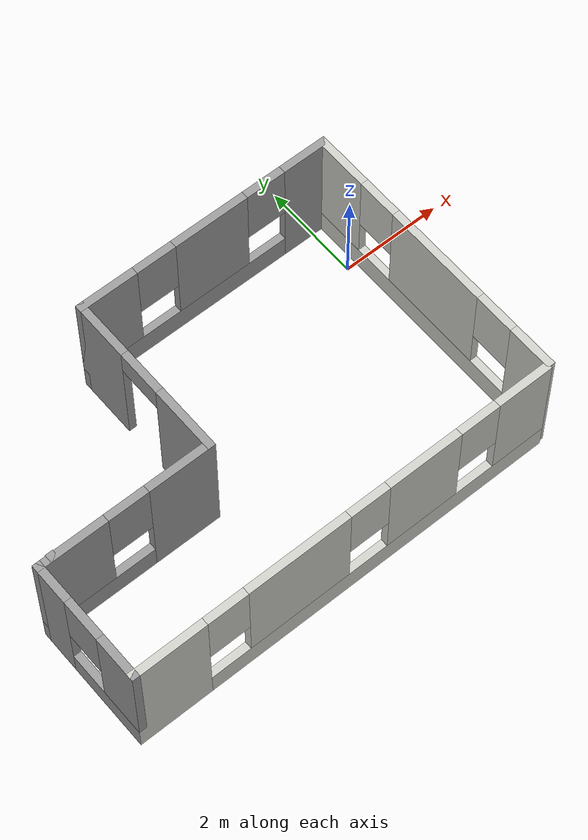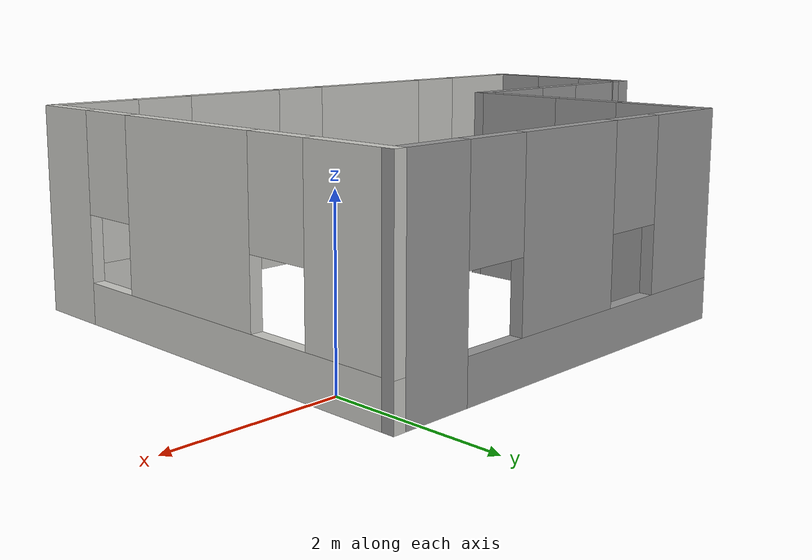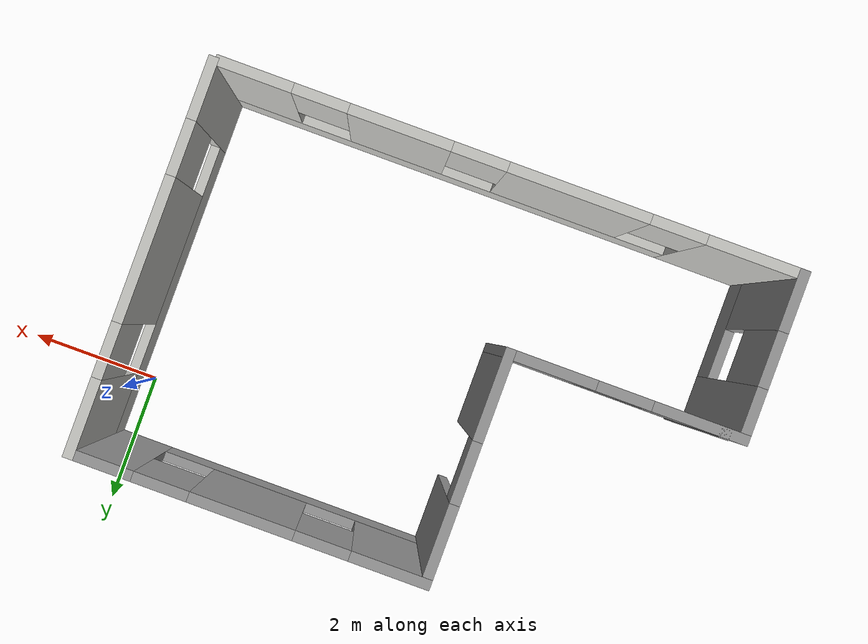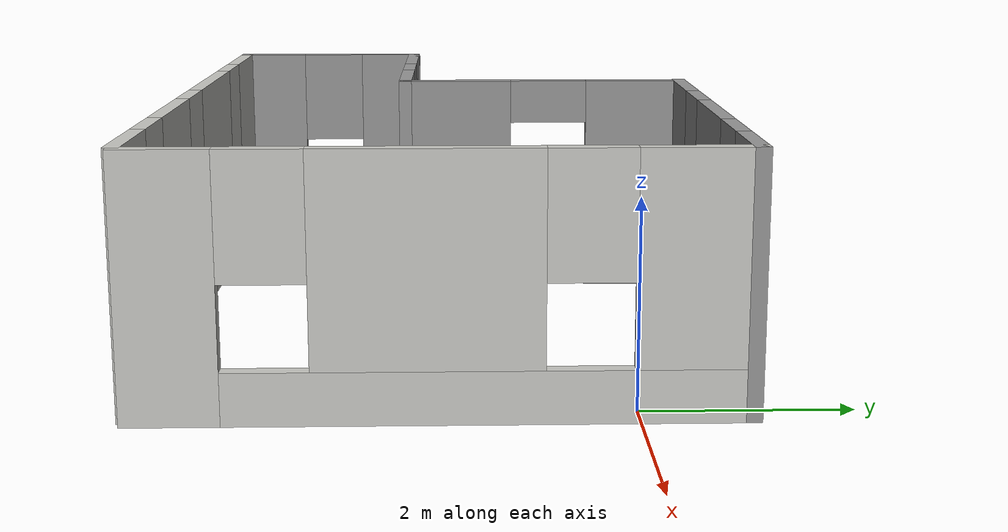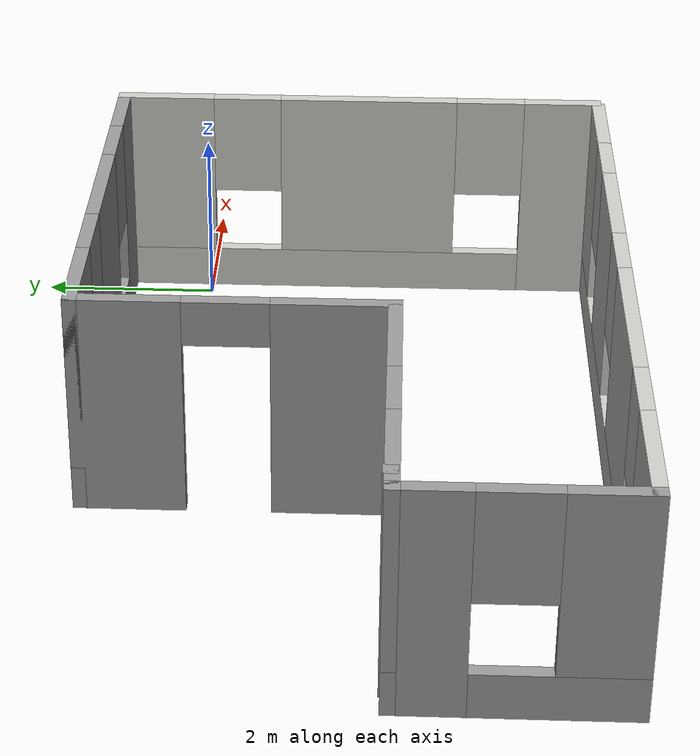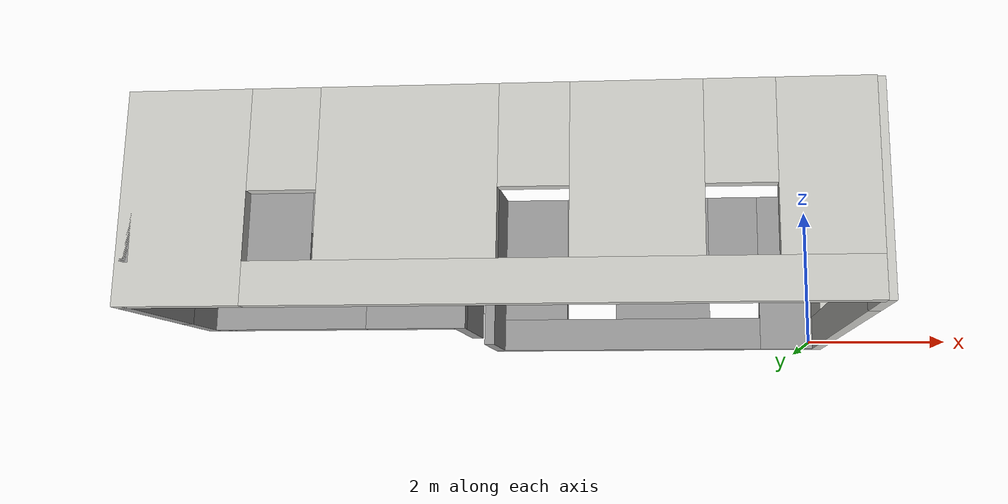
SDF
<?xml version='1.0'?>
<sdf version='1.6'>
  <model name='building'>
    <pose frame=''>-3.96344 -1.80674 0 0 -0 0</pose>
    <link name='Wall_14'>
      <pose frame=''>4.225 0.019583 0 0 -0 1.5708</pose>
      <visual name='Wall_14_Visual_0'>
        <pose frame=''>-2.42247 0 1.25 0 -0 0</pose>
        <geometry>
          <box>
            <size>0.905067 0.15 2.5</size>
          </box>
        </geometry>
        <material>
          <script>
            <uri>file://media/materials/scripts/gazebo.material</uri>
            <name>Gazebo/CeilingTiled</name>
          </script>
          <ambient>1 0.521569 0.65098 1</ambient>
        </material>
        <meta>
          <layer>0</layer>
        </meta>
      </visual>
      <collision name='Wall_14_Collision_0'>
        <geometry>
          <box>
            <size>0.905067 0.15 2.5</size>
          </box>
        </geometry>
        <pose frame=''>-2.42247 0 1.25 0 -0 0</pose>
      </collision>
      <visual name='Wall_14_Visual_1'>
        <pose frame=''>0.452533 0 0.25 0 -0 0</pose>
        <geometry>
          <box>
            <size>4.84493 0.15 0.5</size>
          </box>
        </geometry>
        <material>
          <script>
            <uri>file://media/materials/scripts/gazebo.material</uri>
            <name>Gazebo/CeilingTiled</name>
          </script>
          <ambient>1 0.521569 0.65098 1</ambient>
        </material>
        <meta>
          <layer>0</layer>
        </meta>
      </visual>
      <collision name='Wall_14_Collision_1'>
        <geometry>
          <box>
            <size>4.84493 0.15 0.5</size>
          </box>
        </geometry>
        <pose frame=''>0.452533 0 0.25 0 -0 0</pose>
      </collision>
      <visual name='Wall_14_Visual_2'>
        <pose frame=''>-0.120222 0 1.5 0 -0 0</pose>
        <geometry>
          <box>
            <size>2.09942 0.15 2</size>
          </box>
        </geometry>
        <material>
          <script>
            <uri>file://media/materials/scripts/gazebo.material</uri>
            <name>Gazebo/CeilingTiled</name>
          </script>
          <ambient>1 0.521569 0.65098 1</ambient>
        </material>
        <meta>
          <layer>0</layer>
        </meta>
      </visual>
      <collision name='Wall_14_Collision_2'>
        <geometry>
          <box>
            <size>2.09942 0.15 2</size>
          </box>
        </geometry>
        <pose frame=''>-0.120222 0 1.5 0 -0 0</pose>
      </collision>
      <visual name='Wall_14_Visual_3'>
        <pose frame=''>2.30224 0 1.5 0 -0 0</pose>
        <geometry>
          <box>
            <size>1.14551 0.15 2</size>
          </box>
        </geometry>
        <material>
          <script>
            <uri>file://media/materials/scripts/gazebo.material</uri>
            <name>Gazebo/CeilingTiled</name>
          </script>
          <ambient>1 0.521569 0.65098 1</ambient>
        </material>
        <meta>
          <layer>0</layer>
        </meta>
      </visual>
      <collision name='Wall_14_Collision_3'>
        <geometry>
          <box>
            <size>1.14551 0.15 2</size>
          </box>
        </geometry>
        <pose frame=''>2.30224 0 1.5 0 -0 0</pose>
      </collision>
      <visual name='Wall_14_Visual_4'>
        <pose frame=''>-1.56993 0 1.9 0 -0 0</pose>
        <geometry>
          <box>
            <size>0.8 0.15 1.2</size>
          </box>
        </geometry>
        <material>
          <script>
            <uri>file://media/materials/scripts/gazebo.material</uri>
            <name>Gazebo/CeilingTiled</name>
          </script>
          <ambient>1 0.521569 0.65098 1</ambient>
        </material>
        <meta>
          <layer>0</layer>
        </meta>
      </visual>
      <collision name='Wall_14_Collision_4'>
        <geometry>
          <box>
            <size>0.8 0.15 1.2</size>
          </box>
        </geometry>
        <pose frame=''>-1.56993 0 1.9 0 -0 0</pose>
      </collision>
      <visual name='Wall_14_Visual_5'>
        <pose frame=''>1.32949 0 1.9 0 -0 0</pose>
        <geometry>
          <box>
            <size>0.8 0.15 1.2</size>
          </box>
        </geometry>
        <material>
          <script>
            <uri>file://media/materials/scripts/gazebo.material</uri>
            <name>Gazebo/CeilingTiled</name>
          </script>
          <ambient>1 0.521569 0.65098 1</ambient>
        </material>
        <meta>
          <layer>0</layer>
        </meta>
      </visual>
      <collision name='Wall_14_Collision_5'>
        <geometry>
          <box>
            <size>0.8 0.15 1.2</size>
          </box>
        </geometry>
        <pose frame=''>1.32949 0 1.9 0 -0 0</pose>
      </collision>
    </link>
    <link name='Wall_15'>
      <pose frame=''>1.675 2.81958 0 0 -0 3.14159</pose>
      <visual name='Wall_15_Visual_0'>
        <pose frame=''>-2.13883 0 1.25 0 -0 0</pose>
        <geometry>
          <box>
            <size>0.972331 0.15 2.5</size>
          </box>
        </geometry>
        <material>
          <script>
            <uri>file://media/materials/scripts/gazebo.material</uri>
            <name>Gazebo/Grey</name>
          </script>
          <ambient>1 1 1 1</ambient>
        </material>
        <meta>
          <layer>0</layer>
        </meta>
      </visual>
      <collision name='Wall_15_Collision_0'>
        <geometry>
          <box>
            <size>0.972331 0.15 2.5</size>
          </box>
        </geometry>
        <pose frame=''>-2.13883 0 1.25 0 -0 0</pose>
      </collision>
      <visual name='Wall_15_Visual_1'>
        <pose frame=''>0.486165 0 0.25 0 -0 0</pose>
        <geometry>
          <box>
            <size>4.27767 0.15 0.5</size>
          </box>
        </geometry>
        <material>
          <script>
            <uri>file://media/materials/scripts/gazebo.material</uri>
            <name>Gazebo/Grey</name>
          </script>
          <ambient>1 1 1 1</ambient>
        </material>
        <meta>
          <layer>0</layer>
        </meta>
      </visual>
      <collision name='Wall_15_Collision_1'>
        <geometry>
          <box>
            <size>4.27767 0.15 0.5</size>
          </box>
        </geometry>
        <pose frame=''>0.486165 0 0.25 0 -0 0</pose>
      </collision>
      <visual name='Wall_15_Visual_2'>
        <pose frame=''>-0.095561 0 1.5 0 -0 0</pose>
        <geometry>
          <box>
            <size>1.51422 0.15 2</size>
          </box>
        </geometry>
        <material>
          <script>
            <uri>file://media/materials/scripts/gazebo.material</uri>
            <name>Gazebo/Grey</name>
          </script>
          <ambient>1 1 1 1</ambient>
        </material>
        <meta>
          <layer>0</layer>
        </meta>
      </visual>
      <collision name='Wall_15_Collision_2'>
        <geometry>
          <box>
            <size>1.51422 0.15 2</size>
          </box>
        </geometry>
        <pose frame=''>-0.095561 0 1.5 0 -0 0</pose>
      </collision>
      <visual name='Wall_15_Visual_3'>
        <pose frame=''>2.04327 0 1.5 0 -0 0</pose>
        <geometry>
          <box>
            <size>1.16345 0.15 2</size>
          </box>
        </geometry>
        <material>
          <script>
            <uri>file://media/materials/scripts/gazebo.material</uri>
            <name>Gazebo/Grey</name>
          </script>
          <ambient>1 1 1 1</ambient>
        </material>
        <meta>
          <layer>0</layer>
        </meta>
      </visual>
      <collision name='Wall_15_Collision_3'>
        <geometry>
          <box>
            <size>1.16345 0.15 2</size>
          </box>
        </geometry>
        <pose frame=''>2.04327 0 1.5 0 -0 0</pose>
      </collision>
      <visual name='Wall_15_Visual_4'>
        <pose frame=''>-1.25267 0 1.9 0 -0 0</pose>
        <geometry>
          <box>
            <size>0.8 0.15 1.2</size>
          </box>
        </geometry>
        <material>
          <script>
            <uri>file://media/materials/scripts/gazebo.material</uri>
            <name>Gazebo/Grey</name>
          </script>
          <ambient>1 1 1 1</ambient>
        </material>
        <meta>
          <layer>0</layer>
        </meta>
      </visual>
      <collision name='Wall_15_Collision_4'>
        <geometry>
          <box>
            <size>0.8 0.15 1.2</size>
          </box>
        </geometry>
        <pose frame=''>-1.25267 0 1.9 0 -0 0</pose>
      </collision>
      <visual name='Wall_15_Visual_5'>
        <pose frame=''>1.06155 0 1.9 0 -0 0</pose>
        <geometry>
          <box>
            <size>0.8 0.15 1.2</size>
          </box>
        </geometry>
        <material>
          <script>
            <uri>file://media/materials/scripts/gazebo.material</uri>
            <name>Gazebo/Grey</name>
          </script>
          <ambient>1 1 1 1</ambient>
        </material>
        <meta>
          <layer>0</layer>
        </meta>
      </visual>
      <collision name='Wall_15_Collision_5'>
        <geometry>
          <box>
            <size>0.8 0.15 1.2</size>
          </box>
        </geometry>
        <pose frame=''>1.06155 0 1.9 0 -0 0</pose>
      </collision>
    </link>
    <link name='Wall_16'>
      <pose frame=''>-0.875001 1.175 0 0 0 -1.5708</pose>
      <visual name='Wall_16_Visual_0'>
        <pose frame=''>-1.11863 0 1.25 0 -0 0</pose>
        <geometry>
          <box>
            <size>1.20191 0.15 2.5</size>
          </box>
        </geometry>
        <material>
          <script>
            <uri>file://media/materials/scripts/gazebo.material</uri>
            <name>Gazebo/Grey</name>
          </script>
          <ambient>1 1 1 1</ambient>
        </material>
        <meta>
          <layer>0</layer>
        </meta>
      </visual>
      <collision name='Wall_16_Collision_0'>
        <geometry>
          <box>
            <size>1.20191 0.15 2.5</size>
          </box>
        </geometry>
        <pose frame=''>-1.11863 0 1.25 0 -0 0</pose>
      </collision>
      <visual name='Wall_16_Visual_1'>
        <pose frame=''>1.05096 0 1.25 0 -0 0</pose>
        <geometry>
          <box>
            <size>1.33725 0.15 2.5</size>
          </box>
        </geometry>
        <material>
          <script>
            <uri>file://media/materials/scripts/gazebo.material</uri>
            <name>Gazebo/Grey</name>
          </script>
          <ambient>1 1 1 1</ambient>
        </material>
        <meta>
          <layer>0</layer>
        </meta>
      </visual>
      <collision name='Wall_16_Collision_1'>
        <geometry>
          <box>
            <size>1.33725 0.15 2.5</size>
          </box>
        </geometry>
        <pose frame=''>1.05096 0 1.25 0 -0 0</pose>
      </collision>
      <visual name='Wall_16_Visual_2'>
        <pose frame=''>-0.06767 0 2.25 0 -0 0</pose>
        <geometry>
          <box>
            <size>0.9 0.15 0.5</size>
          </box>
        </geometry>
        <material>
          <script>
            <uri>file://media/materials/scripts/gazebo.material</uri>
            <name>Gazebo/Grey</name>
          </script>
          <ambient>1 1 1 1</ambient>
        </material>
        <meta>
          <layer>0</layer>
        </meta>
      </visual>
      <collision name='Wall_16_Collision_2'>
        <geometry>
          <box>
            <size>0.9 0.15 0.5</size>
          </box>
        </geometry>
        <pose frame=''>-0.06767 0 2.25 0 -0 0</pose>
      </collision>
    </link>
    <link name='Wall_19'>
      <collision name='Wall_19_Collision'>
        <geometry>
          <box>
            <size>0.15 0.15 2.5</size>
          </box>
        </geometry>
        <pose frame=''>0 0 1.25 0 -0 0</pose>
      </collision>
      <visual name='Wall_19_Visual'>
        <pose frame=''>0 0 1.25 0 -0 0</pose>
        <geometry>
          <box>
            <size>0.15 0.15 2.5</size>
          </box>
        </geometry>
        <material>
          <script>
            <uri>file://media/materials/scripts/gazebo.material</uri>
            <name>Gazebo/Grey</name>
          </script>
          <ambient>1 1 1 1</ambient>
        </material>
        <meta>
          <layer>0</layer>
        </meta>
      </visual>
      <pose frame=''>-3.96029 -0.454868 0 0 -0 0</pose>
    </link>
    <link name='Wall_26'>
      <pose frame=''>-2.55 -0.469583 0 0 -0 3.14159</pose>
      <visual name='Wall_26_Visual_0'>
        <pose frame=''>-1.08731 0 1.25 0 -0 0</pose>
        <geometry>
          <box>
            <size>1.32537 0.15 2.5</size>
          </box>
        </geometry>
        <material>
          <script>
            <uri>file://media/materials/scripts/gazebo.material</uri>
            <name>Gazebo/Grey</name>
          </script>
          <ambient>1 1 1 1</ambient>
        </material>
        <meta>
          <layer>0</layer>
        </meta>
      </visual>
      <collision name='Wall_26_Collision_0'>
        <geometry>
          <box>
            <size>1.32537 0.15 2.5</size>
          </box>
        </geometry>
        <pose frame=''>-1.08731 0 1.25 0 -0 0</pose>
      </collision>
      <visual name='Wall_26_Visual_1'>
        <pose frame=''>0.662686 0 0.25 0 -0 0</pose>
        <geometry>
          <box>
            <size>2.17463 0.15 0.5</size>
          </box>
        </geometry>
        <material>
          <script>
            <uri>file://media/materials/scripts/gazebo.material</uri>
            <name>Gazebo/Grey</name>
          </script>
          <ambient>1 1 1 1</ambient>
        </material>
        <meta>
          <layer>0</layer>
        </meta>
      </visual>
      <collision name='Wall_26_Collision_1'>
        <geometry>
          <box>
            <size>2.17463 0.15 0.5</size>
          </box>
        </geometry>
        <pose frame=''>0.662686 0 0.25 0 -0 0</pose>
      </collision>
      <visual name='Wall_26_Visual_2'>
        <pose frame=''>1.06269 0 1.5 0 -0 0</pose>
        <geometry>
          <box>
            <size>1.37463 0.15 2</size>
          </box>
        </geometry>
        <material>
          <script>
            <uri>file://media/materials/scripts/gazebo.material</uri>
            <name>Gazebo/Grey</name>
          </script>
          <ambient>1 1 1 1</ambient>
        </material>
        <meta>
          <layer>0</layer>
        </meta>
      </visual>
      <collision name='Wall_26_Collision_2'>
        <geometry>
          <box>
            <size>1.37463 0.15 2</size>
          </box>
        </geometry>
        <pose frame=''>1.06269 0 1.5 0 -0 0</pose>
      </collision>
      <visual name='Wall_26_Visual_3'>
        <pose frame=''>-0.024629 0 1.9 0 -0 0</pose>
        <geometry>
          <box>
            <size>0.8 0.15 1.2</size>
          </box>
        </geometry>
        <material>
          <script>
            <uri>file://media/materials/scripts/gazebo.material</uri>
            <name>Gazebo/Grey</name>
          </script>
          <ambient>1 1 1 1</ambient>
        </material>
        <meta>
          <layer>0</layer>
        </meta>
      </visual>
      <collision name='Wall_26_Collision_3'>
        <geometry>
          <box>
            <size>0.8 0.15 1.2</size>
          </box>
        </geometry>
        <pose frame=''>-0.024629 0 1.9 0 -0 0</pose>
      </collision>
    </link>
    <link name='Wall_27'>
      <pose frame=''>-4.225 -1.64458 0 0 0 -1.5708</pose>
      <visual name='Wall_27_Visual_0'>
        <pose frame=''>-0.845516 0 1.25 0 -0 0</pose>
        <geometry>
          <box>
            <size>0.808968 0.15 2.5</size>
          </box>
        </geometry>
        <material>
          <script>
            <uri>file://media/materials/scripts/gazebo.material</uri>
            <name>Gazebo/Grey</name>
          </script>
          <ambient>1 1 1 1</ambient>
        </material>
        <meta>
          <layer>0</layer>
        </meta>
      </visual>
      <collision name='Wall_27_Collision_0'>
        <geometry>
          <box>
            <size>0.808968 0.15 2.5</size>
          </box>
        </geometry>
        <pose frame=''>-0.845516 0 1.25 0 -0 0</pose>
      </collision>
      <visual name='Wall_27_Visual_1'>
        <pose frame=''>0.404484 0 0.25 0 -0 0</pose>
        <geometry>
          <box>
            <size>1.69103 0.15 0.5</size>
          </box>
        </geometry>
        <material>
          <script>
            <uri>file://media/materials/scripts/gazebo.material</uri>
            <name>Gazebo/Grey</name>
          </script>
          <ambient>1 1 1 1</ambient>
        </material>
        <meta>
          <layer>0</layer>
        </meta>
      </visual>
      <collision name='Wall_27_Collision_1'>
        <geometry>
          <box>
            <size>1.69103 0.15 0.5</size>
          </box>
        </geometry>
        <pose frame=''>0.404484 0 0.25 0 -0 0</pose>
      </collision>
      <visual name='Wall_27_Visual_2'>
        <pose frame=''>0.804484 0 1.5 0 -0 0</pose>
        <geometry>
          <box>
            <size>0.891032 0.15 2</size>
          </box>
        </geometry>
        <material>
          <script>
            <uri>file://media/materials/scripts/gazebo.material</uri>
            <name>Gazebo/Grey</name>
          </script>
          <ambient>1 1 1 1</ambient>
        </material>
        <meta>
          <layer>0</layer>
        </meta>
      </visual>
      <collision name='Wall_27_Collision_2'>
        <geometry>
          <box>
            <size>0.891032 0.15 2</size>
          </box>
        </geometry>
        <pose frame=''>0.804484 0 1.5 0 -0 0</pose>
      </collision>
      <visual name='Wall_27_Visual_3'>
        <pose frame=''>-0.041032 0 1.9 0 -0 0</pose>
        <geometry>
          <box>
            <size>0.8 0.15 1.2</size>
          </box>
        </geometry>
        <material>
          <script>
            <uri>file://media/materials/scripts/gazebo.material</uri>
            <name>Gazebo/Grey</name>
          </script>
          <ambient>1 1 1 1</ambient>
        </material>
        <meta>
          <layer>0</layer>
        </meta>
      </visual>
      <collision name='Wall_27_Collision_3'>
        <geometry>
          <box>
            <size>0.8 0.15 1.2</size>
          </box>
        </geometry>
        <pose frame=''>-0.041032 0 1.9 0 -0 0</pose>
      </collision>
    </link>
    <link name='Wall_28'>
      <pose frame=''>-0.05 -2.81958 0 0 -0 0</pose>
      <visual name='Wall_28_Visual_0'>
        <pose frame=''>-3.52278 0 1.25 0 -0 0</pose>
        <geometry>
          <box>
            <size>1.45443 0.15 2.5</size>
          </box>
        </geometry>
        <material>
          <script>
            <uri>file://media/materials/scripts/gazebo.material</uri>
            <name>Gazebo/CeilingTiled</name>
          </script>
          <ambient>1 0.521569 0.65098 1</ambient>
        </material>
        <meta>
          <layer>0</layer>
        </meta>
      </visual>
      <collision name='Wall_28_Collision_0'>
        <geometry>
          <box>
            <size>1.45443 0.15 2.5</size>
          </box>
        </geometry>
        <pose frame=''>-3.52278 0 1.25 0 -0 0</pose>
      </collision>
      <visual name='Wall_28_Visual_1'>
        <pose frame=''>0.727215 0 0.25 0 -0 0</pose>
        <geometry>
          <box>
            <size>7.04557 0.15 0.5</size>
          </box>
        </geometry>
        <material>
          <script>
            <uri>file://media/materials/scripts/gazebo.material</uri>
            <name>Gazebo/CeilingTiled</name>
          </script>
          <ambient>1 0.521569 0.65098 1</ambient>
        </material>
        <meta>
          <layer>0</layer>
        </meta>
      </visual>
      <collision name='Wall_28_Collision_1'>
        <geometry>
          <box>
            <size>7.04557 0.15 0.5</size>
          </box>
        </geometry>
        <pose frame=''>0.727215 0 0.25 0 -0 0</pose>
      </collision>
      <visual name='Wall_28_Visual_2'>
        <pose frame=''>-0.97246 0 1.5 0 -0 0</pose>
        <geometry>
          <box>
            <size>2.04622 0.15 2</size>
          </box>
        </geometry>
        <material>
          <script>
            <uri>file://media/materials/scripts/gazebo.material</uri>
            <name>Gazebo/CeilingTiled</name>
          </script>
          <ambient>1 0.521569 0.65098 1</ambient>
        </material>
        <meta>
          <layer>0</layer>
        </meta>
      </visual>
      <collision name='Wall_28_Collision_2'>
        <geometry>
          <box>
            <size>2.04622 0.15 2</size>
          </box>
        </geometry>
        <pose frame=''>-0.97246 0 1.5 0 -0 0</pose>
      </collision>
      <visual name='Wall_28_Visual_3'>
        <pose frame=''>1.59446 0 1.5 0 -0 0</pose>
        <geometry>
          <box>
            <size>1.48762 0.15 2</size>
          </box>
        </geometry>
        <material>
          <script>
            <uri>file://media/materials/scripts/gazebo.material</uri>
            <name>Gazebo/CeilingTiled</name>
          </script>
          <ambient>1 0.521569 0.65098 1</ambient>
        </material>
        <meta>
          <layer>0</layer>
        </meta>
      </visual>
      <collision name='Wall_28_Collision_3'>
        <geometry>
          <box>
            <size>1.48762 0.15 2</size>
          </box>
        </geometry>
        <pose frame=''>1.59446 0 1.5 0 -0 0</pose>
      </collision>
      <visual name='Wall_28_Visual_4'>
        <pose frame=''>3.69413 0 1.5 0 -0 0</pose>
        <geometry>
          <box>
            <size>1.11173 0.15 2</size>
          </box>
        </geometry>
        <material>
          <script>
            <uri>file://media/materials/scripts/gazebo.material</uri>
            <name>Gazebo/CeilingTiled</name>
          </script>
          <ambient>1 0.521569 0.65098 1</ambient>
        </material>
        <meta>
          <layer>0</layer>
        </meta>
      </visual>
      <collision name='Wall_28_Collision_4'>
        <geometry>
          <box>
            <size>1.11173 0.15 2</size>
          </box>
        </geometry>
        <pose frame=''>3.69413 0 1.5 0 -0 0</pose>
      </collision>
      <visual name='Wall_28_Visual_5'>
        <pose frame=''>-2.39557 0 1.9 0 -0 0</pose>
        <geometry>
          <box>
            <size>0.8 0.15 1.2</size>
          </box>
        </geometry>
        <material>
          <script>
            <uri>file://media/materials/scripts/gazebo.material</uri>
            <name>Gazebo/CeilingTiled</name>
          </script>
          <ambient>1 0.521569 0.65098 1</ambient>
        </material>
        <meta>
          <layer>0</layer>
        </meta>
      </visual>
      <collision name='Wall_28_Collision_5'>
        <geometry>
          <box>
            <size>0.8 0.15 1.2</size>
          </box>
        </geometry>
        <pose frame=''>-2.39557 0 1.9 0 -0 0</pose>
      </collision>
      <visual name='Wall_28_Visual_6'>
        <pose frame=''>0.45065 0 1.9 0 -0 0</pose>
        <geometry>
          <box>
            <size>0.8 0.15 1.2</size>
          </box>
        </geometry>
        <material>
          <script>
            <uri>file://media/materials/scripts/gazebo.material</uri>
            <name>Gazebo/CeilingTiled</name>
          </script>
          <ambient>1 0.521569 0.65098 1</ambient>
        </material>
        <meta>
          <layer>0</layer>
        </meta>
      </visual>
      <collision name='Wall_28_Collision_6'>
        <geometry>
          <box>
            <size>0.8 0.15 1.2</size>
          </box>
        </geometry>
        <pose frame=''>0.45065 0 1.9 0 -0 0</pose>
      </collision>
      <visual name='Wall_28_Visual_7'>
        <pose frame=''>2.73827 0 1.9 0 -0 0</pose>
        <geometry>
          <box>
            <size>0.8 0.15 1.2</size>
          </box>
        </geometry>
        <material>
          <script>
            <uri>file://media/materials/scripts/gazebo.material</uri>
            <name>Gazebo/CeilingTiled</name>
          </script>
          <ambient>1 0.521569 0.65098 1</ambient>
        </material>
        <meta>
          <layer>0</layer>
        </meta>
      </visual>
      <collision name='Wall_28_Collision_7'>
        <geometry>
          <box>
            <size>0.8 0.15 1.2</size>
          </box>
        </geometry>
        <pose frame=''>2.73827 0 1.9 0 -0 0</pose>
      </collision>
    </link>
    <static>1</static>
  </model>
</sdf>
